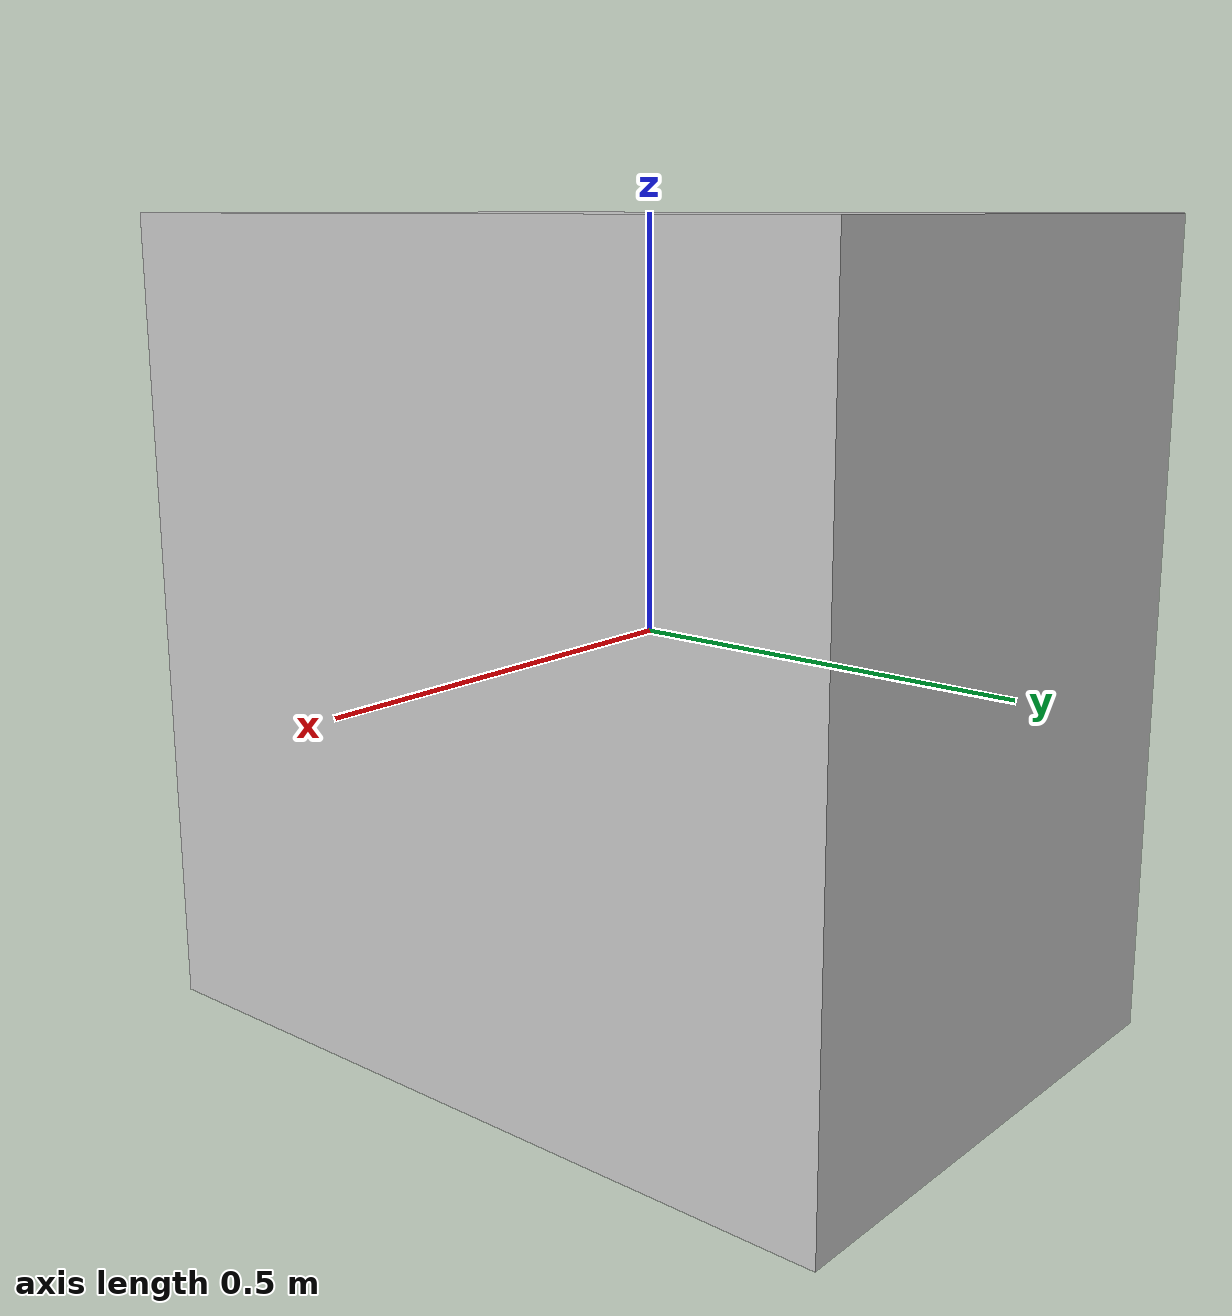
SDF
<!-- wall_obstacle.sdf -->
<sdf version="1.6">
  <model name="wall_obstacle">
    <static>true</static>
    <link name="link">
      <pose>0 0 0 0 0 0</pose>

      <visual name="visual">
        <geometry>
          <box>
            <size>0.7 1.0 1</size> <!-- x=0.05, y=(from -0.5 to 0.5), z=1 -->
          </box>
        </geometry>
        <material>
          <ambient>0.8 0.8 0.8 1</ambient>
          <diffuse>0.8 0.8 0.8 1</diffuse>
        </material>
      </visual>
    </link>
  </model>
</sdf>
